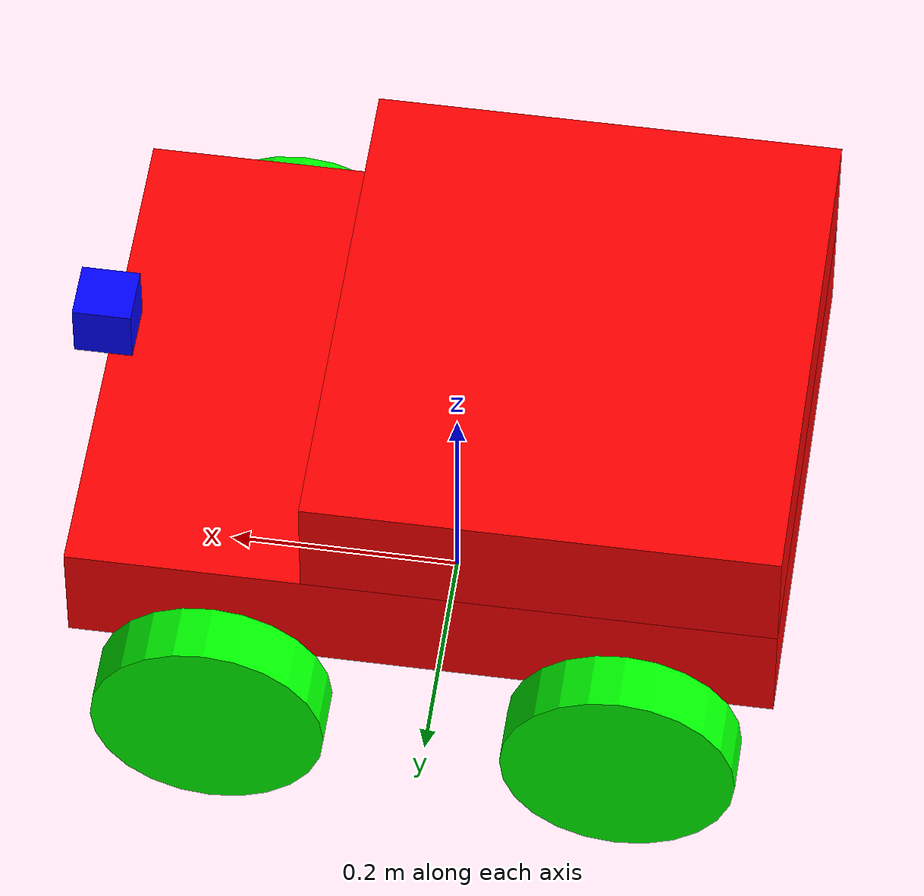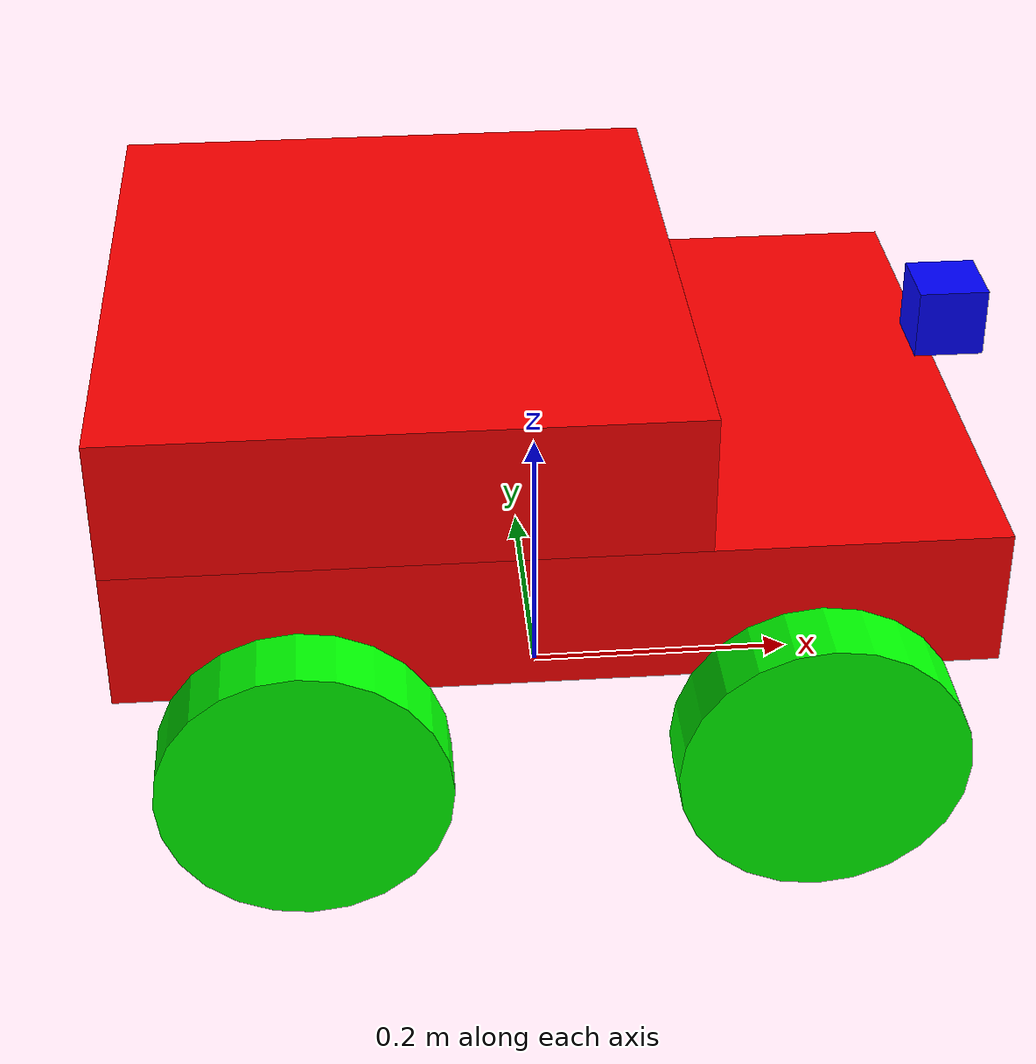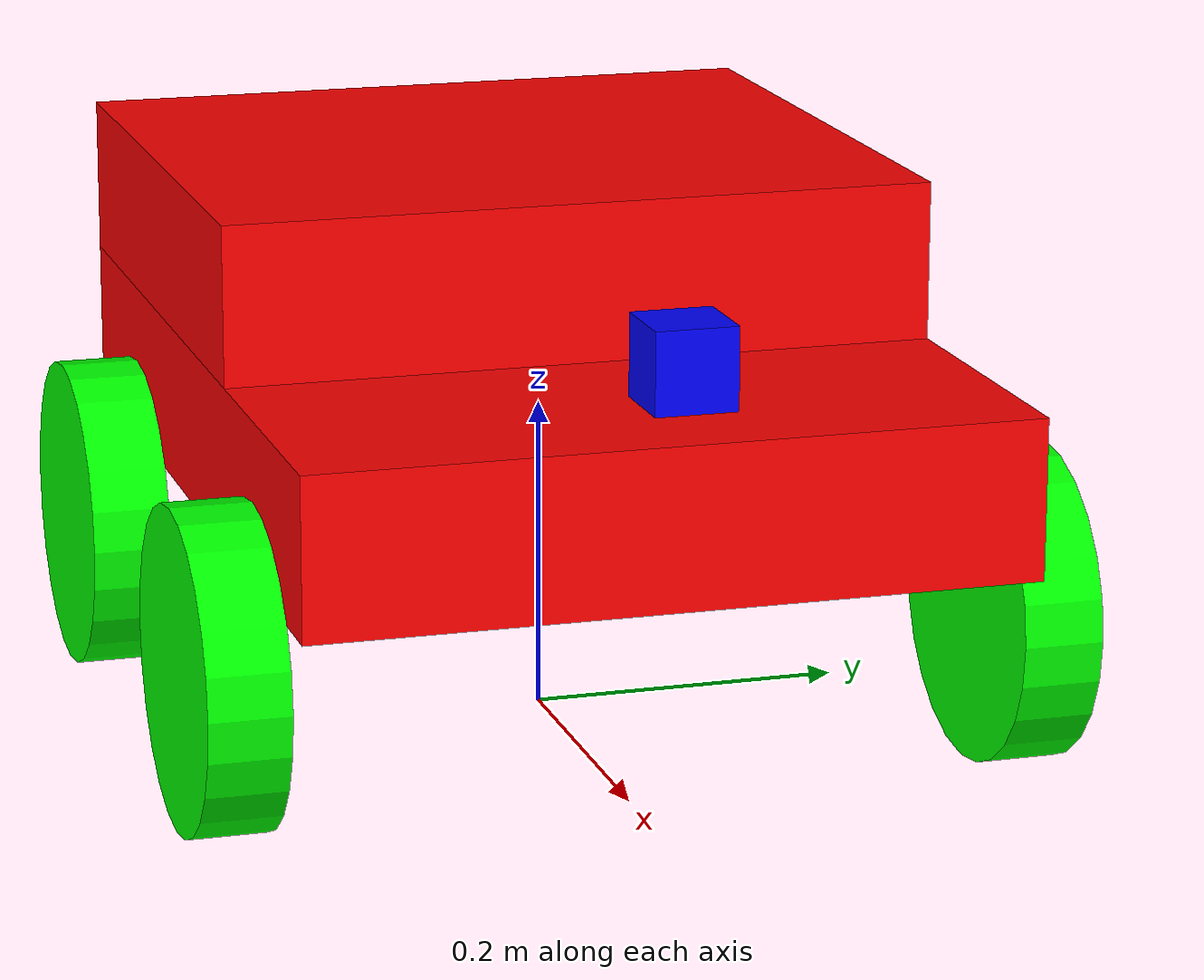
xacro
<?xml version='1.0'?>

<robot name="eren_bot" xmlns:xacro="http://www.ros.org/wiki/xacro">
    <xacro:include filename="$(find eren_bot_description)/urdf/eren_bot_gazebo.xacro"/>

    <link name="robot_footprint">
    </link>

    <joint name="robot_footprint_joint" type="fixed">
        <parent link="robot_footprint"/>
        <child link="base_link"/>
    </joint>

    <link name="base_link">
        <inertial>
            <origin xyz="0.0 0.0 0.0"/>
            <mass value="20"/>
            <inertia ixx="0.1" ixy="0.0" ixz="0.0" iyy="0.1" iyz="0.0" izz="0.1"/>
        </inertial>
        <visual name='base_link_visual'>
            <origin xyz="0.0 0.0 0.20" />
            <geometry>
                <box size="0.6 0.45 0.1"/>
            </geometry>
             <material name="">
            <color rgba="1.0 0.0 0.0 1.0"/>
            <texture filename=""/>
        </material>
        </visual>

        <collision name='1'>
            <origin xyz="0.0 0.0 0.2" rpy="0.0 0.0 0.0"/>
            <geometry>
                <box size="0.6 0.45 0.1"/>
            </geometry>
        </collision>
        <visual name='base_link_visual'>
            <origin xyz="-0.10 0.0 0.30" />
            <geometry>
                <box size="0.4 0.45 0.1"/>
            </geometry>
             <material name="">
            <color rgba="1.0 0.0 0.0 1.0"/>
            <texture filename=""/>
        </material>
        </visual>

        <collision name='2'>
            <origin xyz="-0.10 0.0 0.30" />
            <geometry>
                <box size="0.4 0.45 0.1"/>
            </geometry>
        </collision>
        </link>

    <link name="front_right_wheel">
    <inertial>
      <mass value="5"/>
      <origin rpy="0 0 0" xyz="0 0 0"/>
      <inertia ixx="0.1" ixy="0" ixz="0" iyy="0.1" iyz="0" izz="0.1"/>
    </inertial>

    <collision name="front_right_wheel_collision">
      <origin rpy="0 1.5707 1.5707" xyz="0 0 0" />
      <geometry>
        <cylinder length="0.05" radius="0.1"/>
      </geometry>
    </collision>

    <visual name="front_right_wheel_visual">
      <origin rpy="0 1.5707 1.5707" xyz="0 0 0"/>
      <geometry>
        <cylinder length="0.05" radius="0.1"/>
      </geometry>
     <material name="">
            <color rgba="0.0 1.0 0.0 1.0"/>
            <texture filename=""/>
        </material>
    </visual>

  </link>
  <joint name="front_right_wheel_joint" type="continuous">
    <origin rpy="0 0 0" xyz="0.175 -0.25 0.1"/>
    <child link="front_right_wheel" />
    <parent link="base_link"/>
    <axis rpy="0 0 0" xyz="0 1 0"/>
  </joint>

    <link name="front_left_wheel">
    <inertial>
      <mass value="5"/>
      <origin rpy="0 0 0" xyz="0 0 0"/>
      <inertia ixx="0.1" ixy="0" ixz="0" iyy="0.1" iyz="0" izz="0.1"/>
    </inertial>

    <collision name="front_left_wheel_collision">
      <origin rpy="0 1.5707 1.5707" xyz="0 0 0" />
      <geometry>
        <cylinder length="0.05" radius="0.1"/>
      </geometry>
    </collision>

    <visual name="front_left_wheel_visual">
      <origin rpy="0 1.5707 1.5707" xyz="0 0 0"/>
      <geometry>
        <cylinder length="0.05" radius="0.1"/>
      </geometry>
      <material name="">
            <color rgba="0.0 1.0 0.0 1.0"/>
            <texture filename=""/>
        </material>
    </visual>

  </link>
  <joint name="front_left_wheel_joint" type="continuous">
   <origin rpy="0 0 0" xyz="0.175 0.25 0.1"/>
    <child link="front_left_wheel" />
    <parent link="base_link"/>
    <axis rpy="0 0 0" xyz="0 1 0"/>
  </joint>

<link name="back_left_wheel">
    <inertial>
      <mass value="5"/>
      <origin rpy="0 0 0" xyz="0 0 0"/>
      <inertia ixx="0.1" ixy="0" ixz="0" iyy="0.1" iyz="0" izz="0.1"/>
    </inertial>

    <collision name="back_left_wheel_collision">
    <origin xyz="0.0 0.0 0.0" rpy="0.0 0.0 0.0"/>
      <geometry>
        <cylinder length="0.05" radius="0.1"/>
      </geometry>
    </collision>

    <visual name="back_left_wheel_visual">
      <origin xyz="0.0 0.0 0.0" rpy="0.0 0.0 0.0"/>
      <geometry>
        <cylinder length="0.05" radius="0.1"/>
      </geometry>
      <material name="">
            <color rgba="0.0 1.0 0.0 1.0"/>
            <texture filename=""/>
        </material>
    </visual>

  </link>
  <joint name="back_left_wheel_joint" type="continuous">
   <origin rpy="0 -1.5707 1.5707" xyz="-0.175 0.25 0.1" />
    <child link="back_left_wheel" />
    <parent link="base_link"/>
    <axis rpy="0 0 0" xyz="0 1 0"/>
  </joint>

  <link name="back_right_wheel">
    <inertial>
      <mass value="5"/>
      <origin rpy="0 0 0" xyz="0 0 0"/>
      <inertia ixx="0.1" ixy="0" ixz="0" iyy="0.1" iyz="0" izz="0.1"/>
    </inertial>

    <collision name="back_right_wheel_collision">
      <origin xyz="0.0 0.0 0.0" rpy="0.0 0.0 0.0"/>
      <geometry>
        <cylinder length="0.05" radius="0.1"/>
      </geometry>
    </collision>

    <visual name="back_right_wheel_visual">
      <origin xyz="0.0 0.0 0.0" rpy="0.0 0.0 0.0"/>
      <geometry>
        <cylinder length="0.05" radius="0.1"/>
      </geometry>
      <material name="">
            <color rgba="0.0 1.0 0.0 1.0"/>
            <texture filename=""/>
        </material>
    </visual>

  </link>
  <joint name="back_right_wheel_joint" type="continuous">
    <origin rpy="0 -1.5707 1.5707" xyz="-0.175 -0.25 0.1" />
    <child link="back_right_wheel" />
    <parent link="base_link"/>
    <axis rpy="0 0 0" xyz="0 1 0"/>
  </joint>

  <!-- Kamera Linki -->
  <link name="camera_link">
      <inertial>
          <origin xyz="0.0 0.0 0.0" rpy="0.0 0.0 0.0"/>
          <mass value="0.1"/>
          <inertia ixx="0.0" ixy="0.0" ixz="0.0" iyy="0.0" iyz="0.0" izz="0.0"/>
      </inertial>
      <visual>
          <origin xyz="0 0 0" rpy="0 0 0"/>
          <geometry>
              <box size="0.05 0.05 0.05"/>
          </geometry>
          <material name="Gazebo/Blue">
              <color rgba="0.0 0.0 1.0 1.0"/>
          </material>
      </visual>
      <collision>
          <origin xyz="0.0 0.0 0.0" rpy="0.0 0.0 0.0"/>
          <geometry>
              <box size="0.05 0.05 0.05"/>
          </geometry>
      </collision>
  </link>

  <!-- Kamera Joint'i -->
  <joint name="camera_joint" type="fixed">
      <parent link="base_link"/>
      <child link="camera_link"/>
      <origin xyz="0.3 0.0 0.3" rpy="0 0 0"/>
  </joint>

</robot>
